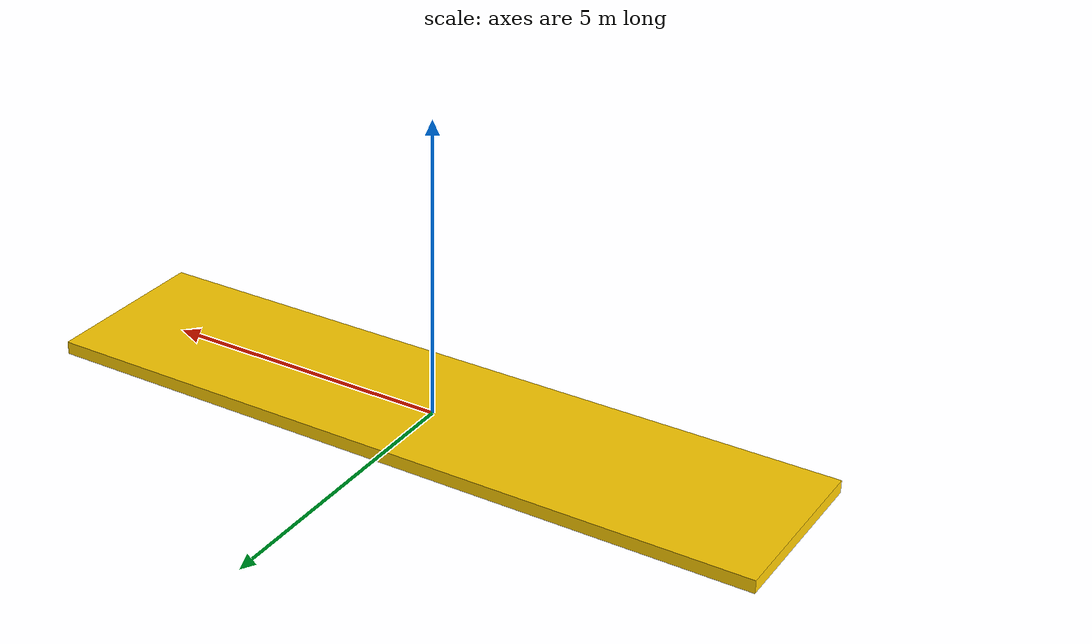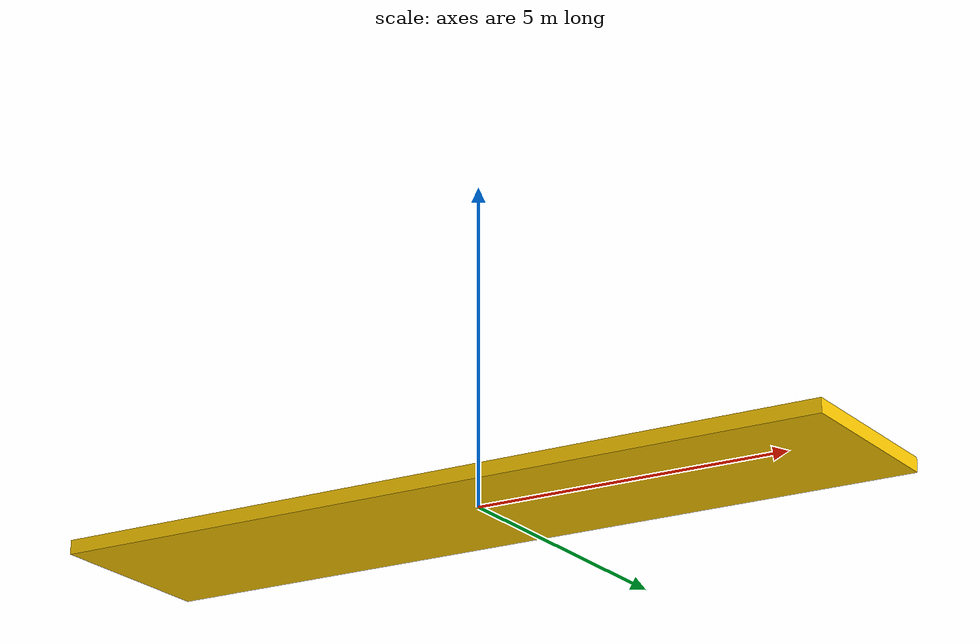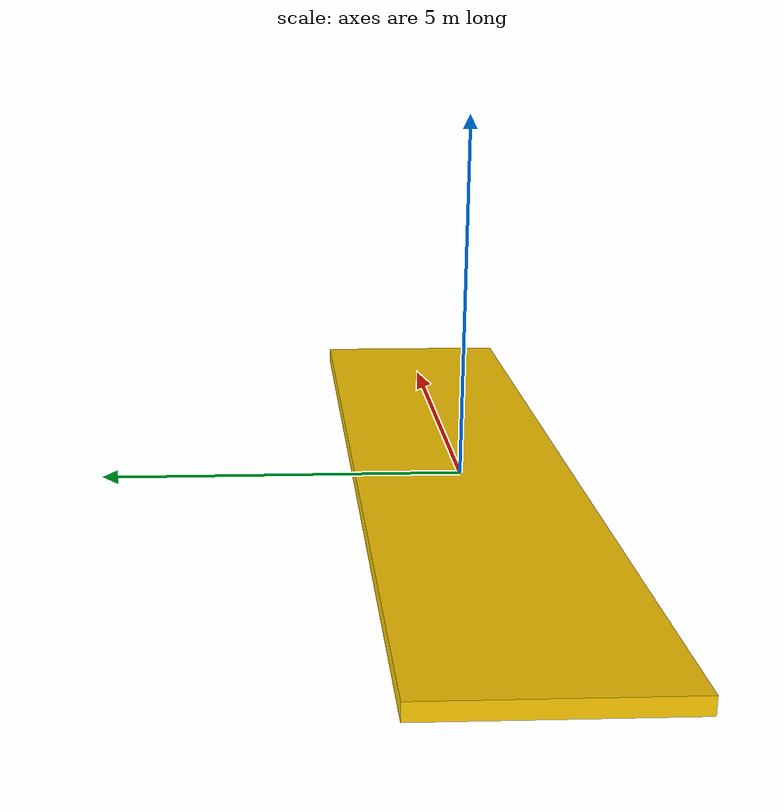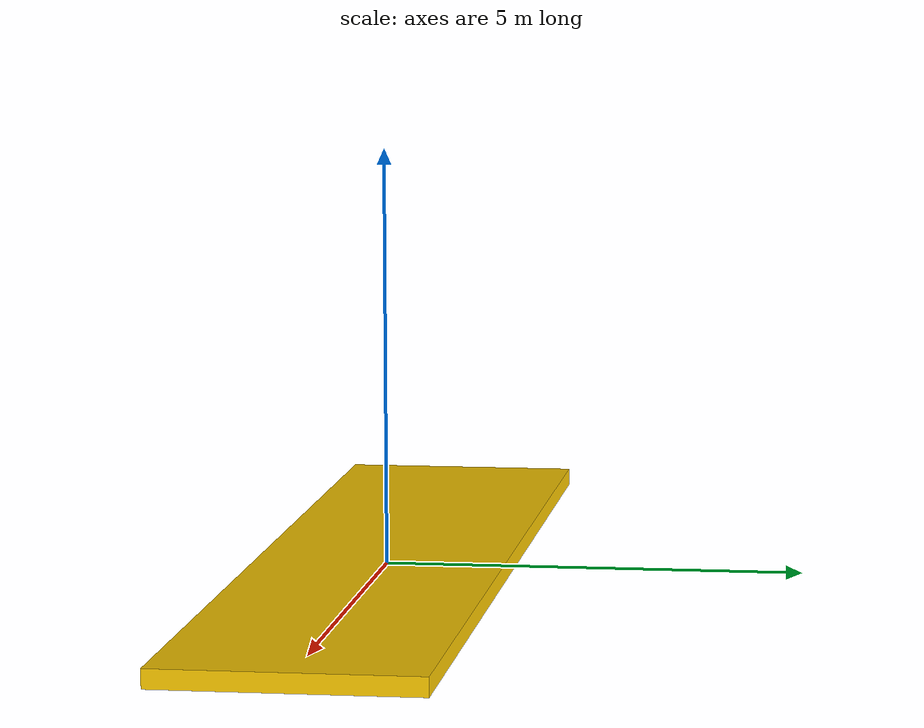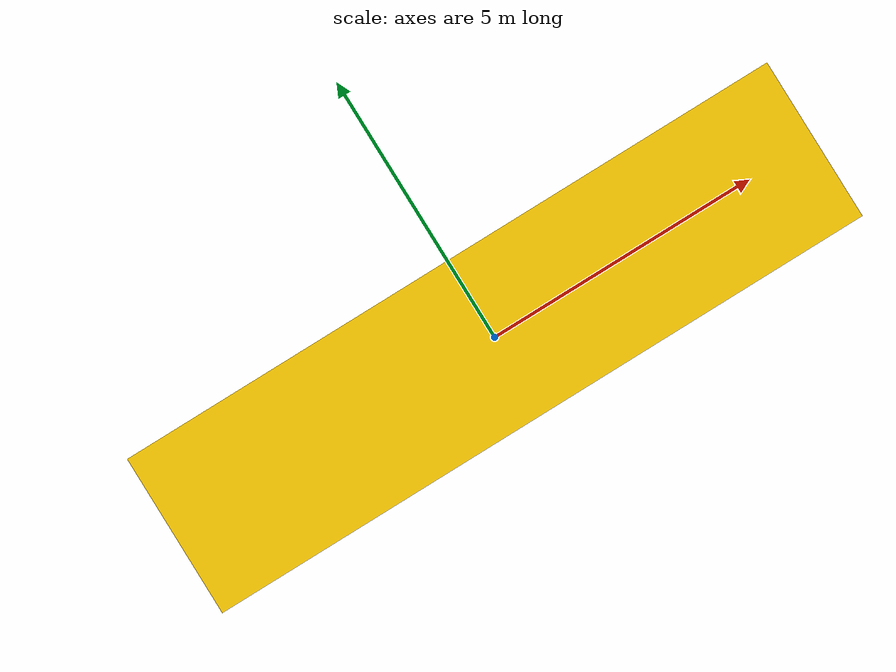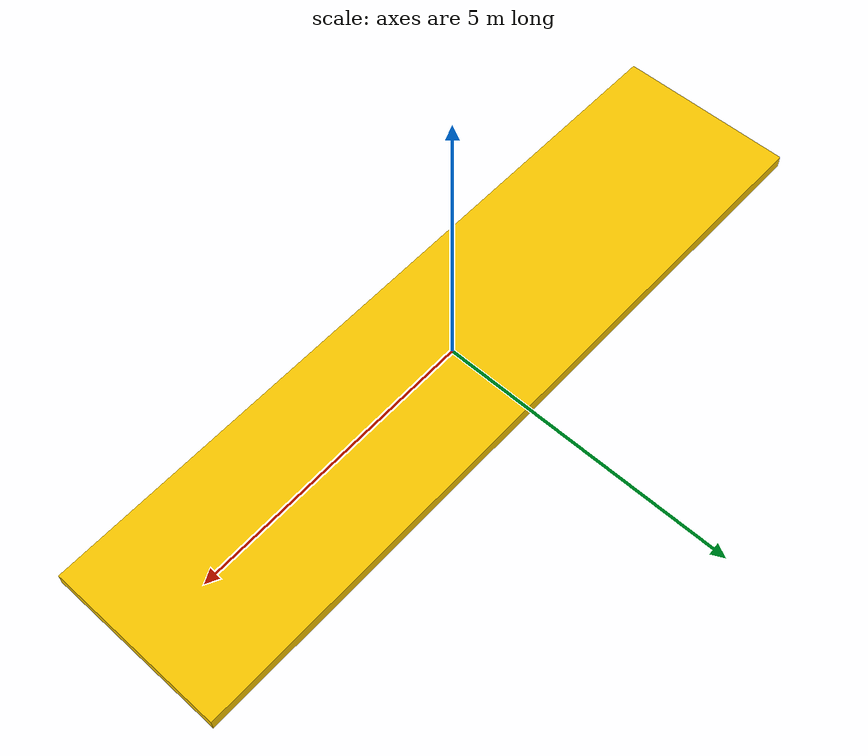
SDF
<?xml version="1.0" ?>
<sdf version="1.9">
  <model name="bump_018">
    <static>true</static>
    <link name="link">
      <collision name="collision">
        <geometry>
          <box>
            <!-- ===== 여기 두 숫자만 수정하면 가로/세로 크기가 바뀝니다 ===== -->
            <!-- 순서: 가로(도로 폭) 세로(로봇 진행방향) 높이(0.22, "0.18 이상" 규격에서 -->
            <!-- 여유를 두어 더 높게 설정 - 확실하게 막히도록. 0.17 이하로는 절대 내리지 마세요) -->
            <size>12.5 3 0.22</size>
          </box>
        </geometry>
      </collision>
      <visual name="visual">
        <geometry>
          <box>
            <!-- collision과 반드시 같은 숫자로! -->
            <size>12.5 3 0.22</size>
          </box>
        </geometry>
        <material>
          <!-- 다른 방지턱들과 통일된 노란색 -->
          <ambient>1 0.75 0 1</ambient>
          <diffuse>1 0.8 0 1</diffuse>
        </material>
      </visual>
    </link>
  </model>
</sdf>
